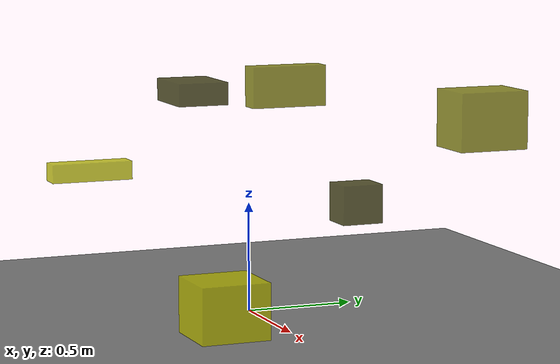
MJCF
<?xml version="1.0"?>
<mujoco model="obstacle_scene">
  <compiler angle="radian" coordinate="local"/>
  <option timestep="0.001" gravity="0 0 -9.81"/>

  <asset>
    <material name="obstacle_mat" rgba="0.8 0.8 0.0 0.8"/>
    <material name="ground_mat" rgba="0.5 0.5 0.5 1"/>
  </asset>

  <worldbody>
    <!-- Ground plane -->
    <geom name="ground" type="plane" size="3 3 0.1" material="ground_mat"/>

    <!-- Obstacles -->
    <body name="obstacle_0" pos="0.317834 0.391447 0.527018">
      <geom name="obs_0" type="box" size="0.078331 0.094782 0.087669" rgba="0.2 0.2 0.0 0.8"/>
    </body>
    <body name="obstacle_1" pos="0.643066 0.849041 0.921390">
      <geom name="obs_1" type="box" size="0.121481 0.160678 0.128547" rgba="0.5 0.5 0.0 0.8"/>
    </body>
    <body name="obstacle_2" pos="0.542642 -0.325926 0.147804">
      <geom name="obs_2" type="box" size="0.148944 0.155511 0.124601" rgba="0.8 0.8 0.0 0.8"/>
    </body>
    <body name="obstacle_3" pos="0.079560 -0.298898 1.032251">
      <geom name="obs_3" type="box" size="0.146304 0.113636 0.049645" rgba="0.2 0.2 0.0 0.8"/>
    </body>
    <body name="obstacle_4" pos="-0.172554 0.251018 1.009314">
      <geom name="obs_4" type="box" size="0.051560 0.180051 0.094402" rgba="0.5 0.5 0.0 0.8"/>
    </body>
    <body name="obstacle_5" pos="-0.763875 -0.519818 0.571587">
      <geom name="obs_5" type="box" size="0.052234 0.197441 0.044167" rgba="0.8 0.8 0.0 0.8"/>
    </body>
  </worldbody>
</mujoco>
